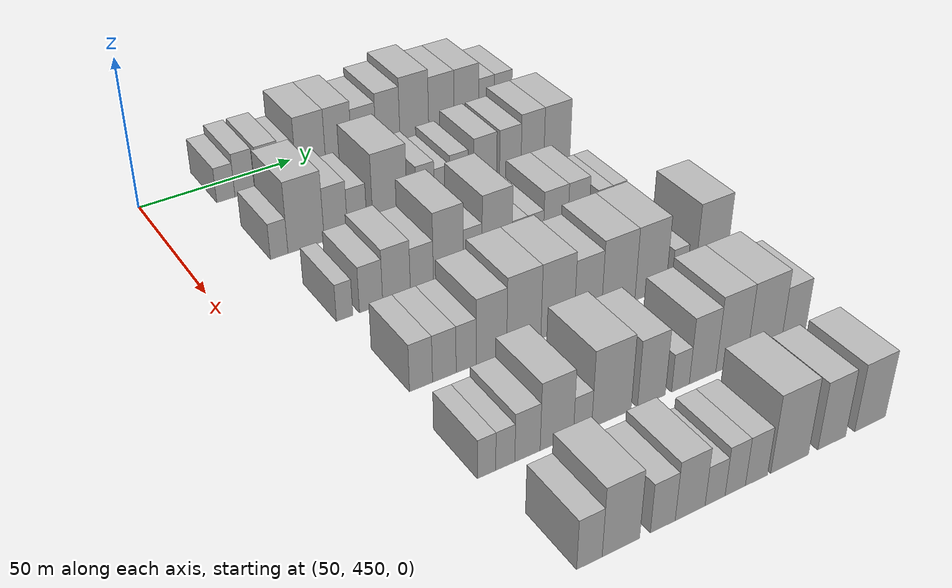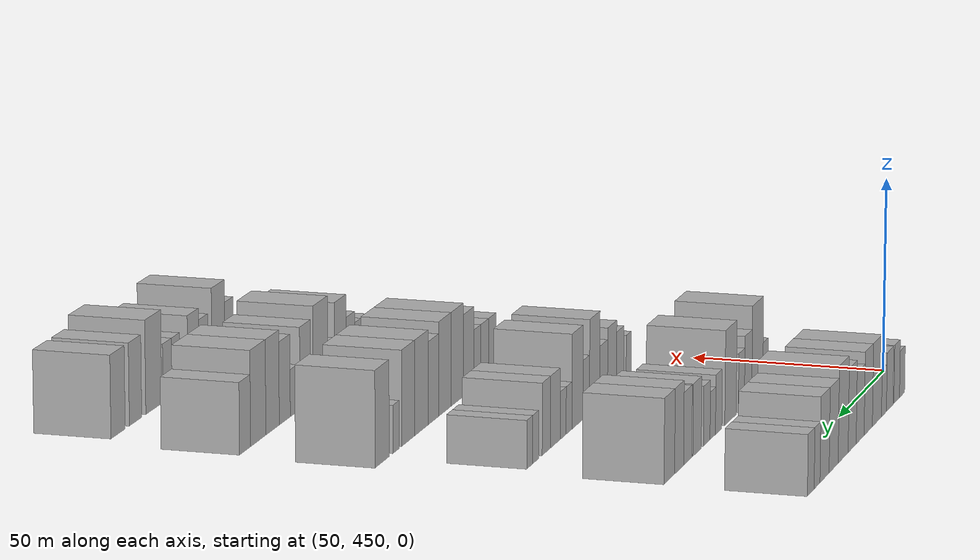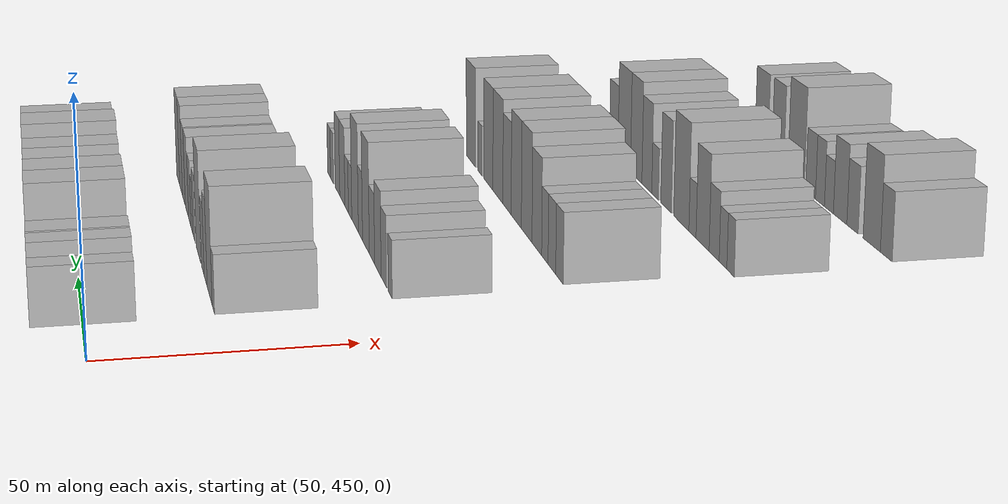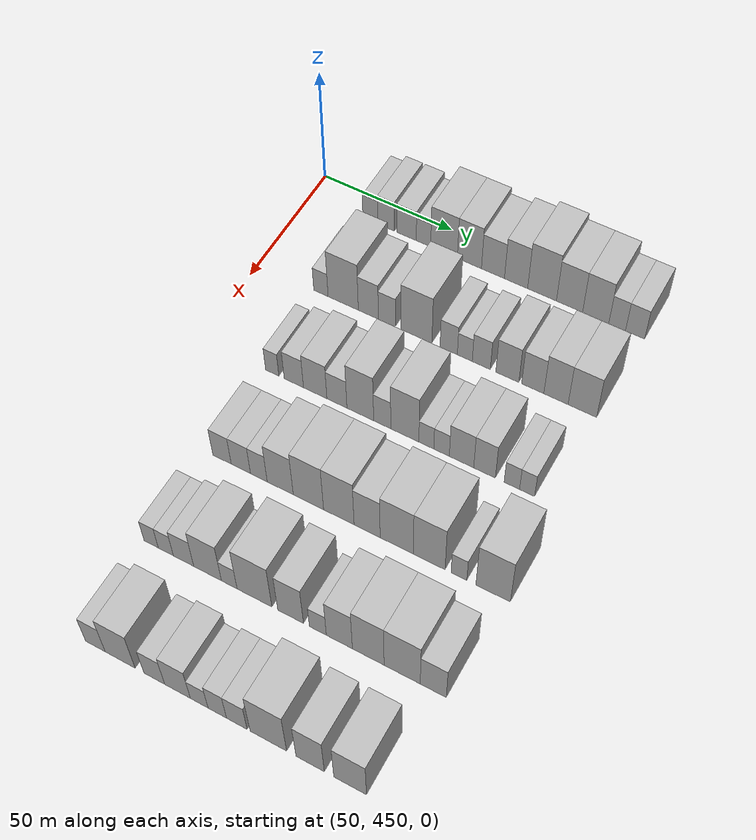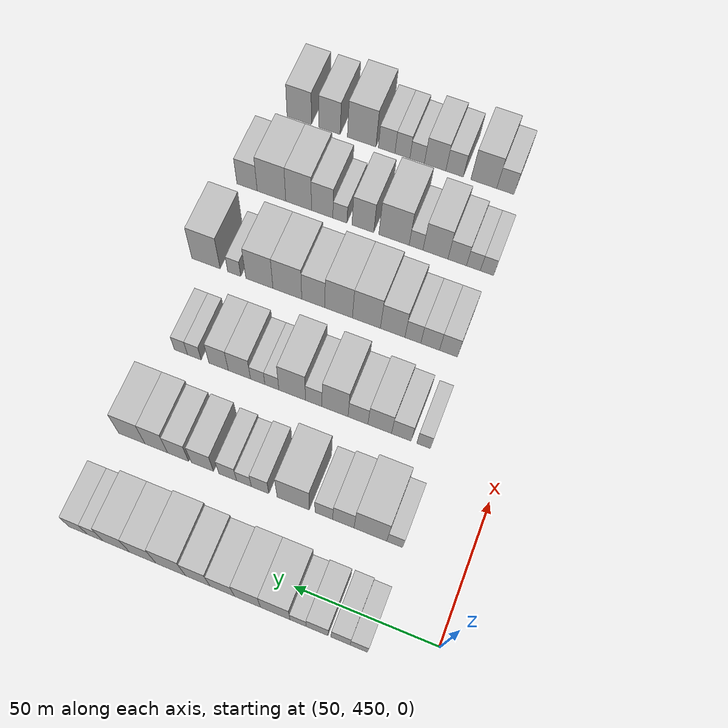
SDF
<sdf version="1.6">
 <world name="default">
  <model name="building_112">
   <static>1</static>
   <pose>50.0000 473.7360 0 0.000000 0.000000 0.000000</pose>
   <link name="link">
    <pose>0 0 6.00 0 0 0</pose>
    <collision name="collision"><geometry><box><size>20.0000 5.9455 12.0000</size></box></geometry></collision>
    <visual name="visual">
     <cast_shadows>0</cast_shadows>
     <geometry><box><size>20.0000 5.9455 12.0000</size></box></geometry>
     <material>
      <script>
       <uri>model://HANNAS_wall/materials/scripts</uri>
       <uri>model://HANNAS_wall/materials/textures</uri>
       <name>vrc/HANNAS_wall</name>
      </script>
     </material>
    </visual>
   </link>
  </model>
  <model name="building_113">
   <static>1</static>
   <pose>50.0000 479.9496 0 0.000000 0.000000 0.000000</pose>
   <link name="link">
    <pose>0 0 7.50 0 0 0</pose>
    <collision name="collision"><geometry><box><size>20.0000 6.4817 15.0000</size></box></geometry></collision>
    <visual name="visual">
     <cast_shadows>0</cast_shadows>
     <geometry><box><size>20.0000 6.4817 15.0000</size></box></geometry>
     <material>
      <script>
       <uri>model://HANNAS_wall/materials/scripts</uri>
       <uri>model://HANNAS_wall/materials/textures</uri>
       <name>vrc/HANNAS_wall</name>
      </script>
     </material>
    </visual>
   </link>
  </model>
  <model name="building_114">
   <static>1</static>
   <pose>50.0000 487.9353 0 0.000000 0.000000 0.000000</pose>
   <link name="link">
    <pose>0 0 7.50 0 0 0</pose>
    <collision name="collision"><geometry><box><size>20.0000 7.4897 15.0000</size></box></geometry></collision>
    <visual name="visual">
     <cast_shadows>0</cast_shadows>
     <geometry><box><size>20.0000 7.4897 15.0000</size></box></geometry>
     <material>
      <script>
       <uri>model://HANNAS_wall/materials/scripts</uri>
       <uri>model://HANNAS_wall/materials/textures</uri>
       <name>vrc/HANNAS_wall</name>
      </script>
     </material>
    </visual>
   </link>
  </model>
  <model name="building_115">
   <static>1</static>
   <pose>50.0000 494.4677 0 0.000000 0.000000 0.000000</pose>
   <link name="link">
    <pose>0 0 6.00 0 0 0</pose>
    <collision name="collision"><geometry><box><size>20.0000 5.5752 12.0000</size></box></geometry></collision>
    <visual name="visual">
     <cast_shadows>0</cast_shadows>
     <geometry><box><size>20.0000 5.5752 12.0000</size></box></geometry>
     <material>
      <script>
       <uri>model://HANNAS_wall/materials/scripts</uri>
       <uri>model://HANNAS_wall/materials/textures</uri>
       <name>vrc/HANNAS_wall</name>
      </script>
     </material>
    </visual>
   </link>
  </model>
  <model name="building_116">
   <static>1</static>
   <pose>50.0000 502.3619 0 0.000000 0.000000 0.000000</pose>
   <link name="link">
    <pose>0 0 10.50 0 0 0</pose>
    <collision name="collision"><geometry><box><size>20.0000 10.2132 21.0000</size></box></geometry></collision>
    <visual name="visual">
     <cast_shadows>0</cast_shadows>
     <geometry><box><size>20.0000 10.2132 21.0000</size></box></geometry>
     <material>
      <script>
       <uri>model://HANNAS_wall/materials/scripts</uri>
       <uri>model://HANNAS_wall/materials/textures</uri>
       <name>vrc/HANNAS_wall</name>
      </script>
     </material>
    </visual>
   </link>
  </model>
  <model name="building_117">
   <static>1</static>
   <pose>50.0000 512.0486 0 0.000000 0.000000 0.000000</pose>
   <link name="link">
    <pose>0 0 10.50 0 0 0</pose>
    <collision name="collision"><geometry><box><size>20.0000 9.1602 21.0000</size></box></geometry></collision>
    <visual name="visual">
     <cast_shadows>0</cast_shadows>
     <geometry><box><size>20.0000 9.1602 21.0000</size></box></geometry>
     <material>
      <script>
       <uri>model://HANNAS_wall/materials/scripts</uri>
       <uri>model://HANNAS_wall/materials/textures</uri>
       <name>vrc/HANNAS_wall</name>
      </script>
     </material>
    </visual>
   </link>
  </model>
  <model name="building_118">
   <static>1</static>
   <pose>50.0000 520.9578 0 0.000000 0.000000 0.000000</pose>
   <link name="link">
    <pose>0 0 9.00 0 0 0</pose>
    <collision name="collision"><geometry><box><size>20.0000 8.6583 18.0000</size></box></geometry></collision>
    <visual name="visual">
     <cast_shadows>0</cast_shadows>
     <geometry><box><size>20.0000 8.6583 18.0000</size></box></geometry>
     <material>
      <script>
       <uri>model://HANNAS_wall/materials/scripts</uri>
       <uri>model://HANNAS_wall/materials/textures</uri>
       <name>vrc/HANNAS_wall</name>
      </script>
     </material>
    </visual>
   </link>
  </model>
  <model name="building_119">
   <static>1</static>
   <pose>50.0000 529.6133 0 0.000000 0.000000 0.000000</pose>
   <link name="link">
    <pose>0 0 10.50 0 0 0</pose>
    <collision name="collision"><geometry><box><size>20.0000 8.6525 21.0000</size></box></geometry></collision>
    <visual name="visual">
     <cast_shadows>0</cast_shadows>
     <geometry><box><size>20.0000 8.6525 21.0000</size></box></geometry>
     <material>
      <script>
       <uri>model://HANNAS_wall/materials/scripts</uri>
       <uri>model://HANNAS_wall/materials/textures</uri>
       <name>vrc/HANNAS_wall</name>
      </script>
     </material>
    </visual>
   </link>
  </model>
  <model name="building_120">
   <static>1</static>
   <pose>50.0000 539.2486 0 0.000000 0.000000 0.000000</pose>
   <link name="link">
    <pose>0 0 12.00 0 0 0</pose>
    <collision name="collision"><geometry><box><size>20.0000 10.6181 24.0000</size></box></geometry></collision>
    <visual name="visual">
     <cast_shadows>0</cast_shadows>
     <geometry><box><size>20.0000 10.6181 24.0000</size></box></geometry>
     <material>
      <script>
       <uri>model://HANNAS_wall/materials/scripts</uri>
       <uri>model://HANNAS_wall/materials/textures</uri>
       <name>vrc/HANNAS_wall</name>
      </script>
     </material>
    </visual>
   </link>
  </model>
  <model name="building_121">
   <static>1</static>
   <pose>50.0000 549.3420 0 0.000000 0.000000 0.000000</pose>
   <link name="link">
    <pose>0 0 10.50 0 0 0</pose>
    <collision name="collision"><geometry><box><size>20.0000 9.5687 21.0000</size></box></geometry></collision>
    <visual name="visual">
     <cast_shadows>0</cast_shadows>
     <geometry><box><size>20.0000 9.5687 21.0000</size></box></geometry>
     <material>
      <script>
       <uri>model://HANNAS_wall/materials/scripts</uri>
       <uri>model://HANNAS_wall/materials/textures</uri>
       <name>vrc/HANNAS_wall</name>
      </script>
     </material>
    </visual>
   </link>
  </model>
  <model name="building_122">
   <static>1</static>
   <pose>50.0000 558.8602 0 0.000000 0.000000 0.000000</pose>
   <link name="link">
    <pose>0 0 10.50 0 0 0</pose>
    <collision name="collision"><geometry><box><size>20.0000 9.4676 21.0000</size></box></geometry></collision>
    <visual name="visual">
     <cast_shadows>0</cast_shadows>
     <geometry><box><size>20.0000 9.4676 21.0000</size></box></geometry>
     <material>
      <script>
       <uri>model://HANNAS_wall/materials/scripts</uri>
       <uri>model://HANNAS_wall/materials/textures</uri>
       <name>vrc/HANNAS_wall</name>
      </script>
     </material>
    </visual>
   </link>
  </model>
  <model name="building_123">
   <static>1</static>
   <pose>50.0000 566.5960 0 0.000000 0.000000 0.000000</pose>
   <link name="link">
    <pose>0 0 7.50 0 0 0</pose>
    <collision name="collision"><geometry><box><size>20.0000 6.0040 15.0000</size></box></geometry></collision>
    <visual name="visual">
     <cast_shadows>0</cast_shadows>
     <geometry><box><size>20.0000 6.0040 15.0000</size></box></geometry>
     <material>
      <script>
       <uri>model://HANNAS_wall/materials/scripts</uri>
       <uri>model://HANNAS_wall/materials/textures</uri>
       <name>vrc/HANNAS_wall</name>
      </script>
     </material>
    </visual>
   </link>
  </model>
  <model name="building_124">
   <static>1</static>
   <pose>50.0000 573.0127 0 0.000000 0.000000 0.000000</pose>
   <link name="link">
    <pose>0 0 7.50 0 0 0</pose>
    <collision name="collision"><geometry><box><size>20.0000 6.8294 15.0000</size></box></geometry></collision>
    <visual name="visual">
     <cast_shadows>0</cast_shadows>
     <geometry><box><size>20.0000 6.8294 15.0000</size></box></geometry>
     <material>
      <script>
       <uri>model://HANNAS_wall/materials/scripts</uri>
       <uri>model://HANNAS_wall/materials/textures</uri>
       <name>vrc/HANNAS_wall</name>
      </script>
     </material>
    </visual>
   </link>
  </model>
  <model name="building_242">
   <static>1</static>
   <pose>85.0000 474.6253 0 0.000000 0.000000 0.000000</pose>
   <link name="link">
    <pose>0 0 6.00 0 0 0</pose>
    <collision name="collision"><geometry><box><size>20.0000 5.5191 12.0000</size></box></geometry></collision>
    <visual name="visual">
     <cast_shadows>0</cast_shadows>
     <geometry><box><size>20.0000 5.5191 12.0000</size></box></geometry>
     <material>
      <script>
       <uri>model://HANNAS_wall/materials/scripts</uri>
       <uri>model://HANNAS_wall/materials/textures</uri>
       <name>vrc/HANNAS_wall</name>
      </script>
     </material>
    </visual>
   </link>
  </model>
  <model name="building_243">
   <static>1</static>
   <pose>85.0000 483.1679 0 0.000000 0.000000 0.000000</pose>
   <link name="link">
    <pose>0 0 12.00 0 0 0</pose>
    <collision name="collision"><geometry><box><size>20.0000 11.5660 24.0000</size></box></geometry></collision>
    <visual name="visual">
     <cast_shadows>0</cast_shadows>
     <geometry><box><size>20.0000 11.5660 24.0000</size></box></geometry>
     <material>
      <script>
       <uri>model://HANNAS_wall/materials/scripts</uri>
       <uri>model://HANNAS_wall/materials/textures</uri>
       <name>vrc/HANNAS_wall</name>
      </script>
     </material>
    </visual>
   </link>
  </model>
  <model name="building_244">
   <static>1</static>
   <pose>85.0000 492.7516 0 0.000000 0.000000 0.000000</pose>
   <link name="link">
    <pose>0 0 9.00 0 0 0</pose>
    <collision name="collision"><geometry><box><size>20.0000 7.6013 18.0000</size></box></geometry></collision>
    <visual name="visual">
     <cast_shadows>0</cast_shadows>
     <geometry><box><size>20.0000 7.6013 18.0000</size></box></geometry>
     <material>
      <script>
       <uri>model://HANNAS_wall/materials/scripts</uri>
       <uri>model://HANNAS_wall/materials/textures</uri>
       <name>vrc/HANNAS_wall</name>
      </script>
     </material>
    </visual>
   </link>
  </model>
  <model name="building_245">
   <static>1</static>
   <pose>85.0000 499.7301 0 0.000000 0.000000 0.000000</pose>
   <link name="link">
    <pose>0 0 7.50 0 0 0</pose>
    <collision name="collision"><geometry><box><size>20.0000 6.3558 15.0000</size></box></geometry></collision>
    <visual name="visual">
     <cast_shadows>0</cast_shadows>
     <geometry><box><size>20.0000 6.3558 15.0000</size></box></geometry>
     <material>
      <script>
       <uri>model://HANNAS_wall/materials/scripts</uri>
       <uri>model://HANNAS_wall/materials/textures</uri>
       <name>vrc/HANNAS_wall</name>
      </script>
     </material>
    </visual>
   </link>
  </model>
  <model name="building_246">
   <static>1</static>
   <pose>85.0000 510.7044 0 0.000000 0.000000 0.000000</pose>
   <link name="link">
    <pose>0 0 12.00 0 0 0</pose>
    <collision name="collision"><geometry><box><size>20.0000 11.5927 24.0000</size></box></geometry></collision>
    <visual name="visual">
     <cast_shadows>0</cast_shadows>
     <geometry><box><size>20.0000 11.5927 24.0000</size></box></geometry>
     <material>
      <script>
       <uri>model://HANNAS_wall/materials/scripts</uri>
       <uri>model://HANNAS_wall/materials/textures</uri>
       <name>vrc/HANNAS_wall</name>
      </script>
     </material>
    </visual>
   </link>
  </model>
  <model name="building_247">
   <static>1</static>
   <pose>85.0000 522.6694 0 0.000000 0.000000 0.000000</pose>
   <link name="link">
    <pose>0 0 7.50 0 0 0</pose>
    <collision name="collision"><geometry><box><size>20.0000 6.3374 15.0000</size></box></geometry></collision>
    <visual name="visual">
     <cast_shadows>0</cast_shadows>
     <geometry><box><size>20.0000 6.3374 15.0000</size></box></geometry>
     <material>
      <script>
       <uri>model://HANNAS_wall/materials/scripts</uri>
       <uri>model://HANNAS_wall/materials/textures</uri>
       <name>vrc/HANNAS_wall</name>
      </script>
     </material>
    </visual>
   </link>
  </model>
  <model name="building_248">
   <static>1</static>
   <pose>85.0000 528.5534 0 0.000000 0.000000 0.000000</pose>
   <link name="link">
    <pose>0 0 6.00 0 0 0</pose>
    <collision name="collision"><geometry><box><size>20.0000 5.4305 12.0000</size></box></geometry></collision>
    <visual name="visual">
     <cast_shadows>0</cast_shadows>
     <geometry><box><size>20.0000 5.4305 12.0000</size></box></geometry>
     <material>
      <script>
       <uri>model://HANNAS_wall/materials/scripts</uri>
       <uri>model://HANNAS_wall/materials/textures</uri>
       <name>vrc/HANNAS_wall</name>
      </script>
     </material>
    </visual>
   </link>
  </model>
  <model name="building_249">
   <static>1</static>
   <pose>85.0000 534.5385 0 0.000000 0.000000 0.000000</pose>
   <link name="link">
    <pose>0 0 7.50 0 0 0</pose>
    <collision name="collision"><geometry><box><size>20.0000 6.5397 15.0000</size></box></geometry></collision>
    <visual name="visual">
     <cast_shadows>0</cast_shadows>
     <geometry><box><size>20.0000 6.5397 15.0000</size></box></geometry>
     <material>
      <script>
       <uri>model://HANNAS_wall/materials/scripts</uri>
       <uri>model://HANNAS_wall/materials/textures</uri>
       <name>vrc/HANNAS_wall</name>
      </script>
     </material>
    </visual>
   </link>
  </model>
  <model name="building_250">
   <static>1</static>
   <pose>85.0000 543.9249 0 0.000000 0.000000 0.000000</pose>
   <link name="link">
    <pose>0 0 9.00 0 0 0</pose>
    <collision name="collision"><geometry><box><size>20.0000 8.2331 18.0000</size></box></geometry></collision>
    <visual name="visual">
     <cast_shadows>0</cast_shadows>
     <geometry><box><size>20.0000 8.2331 18.0000</size></box></geometry>
     <material>
      <script>
       <uri>model://HANNAS_wall/materials/scripts</uri>
       <uri>model://HANNAS_wall/materials/textures</uri>
       <name>vrc/HANNAS_wall</name>
      </script>
     </material>
    </visual>
   </link>
  </model>
  <model name="building_251">
   <static>1</static>
   <pose>85.0000 552.9730 0 0.000000 0.000000 0.000000</pose>
   <link name="link">
    <pose>0 0 9.00 0 0 0</pose>
    <collision name="collision"><geometry><box><size>20.0000 7.8632 18.0000</size></box></geometry></collision>
    <visual name="visual">
     <cast_shadows>0</cast_shadows>
     <geometry><box><size>20.0000 7.8632 18.0000</size></box></geometry>
     <material>
      <script>
       <uri>model://HANNAS_wall/materials/scripts</uri>
       <uri>model://HANNAS_wall/materials/textures</uri>
       <name>vrc/HANNAS_wall</name>
      </script>
     </material>
    </visual>
   </link>
  </model>
  <model name="building_252">
   <static>1</static>
   <pose>85.0000 561.1648 0 0.000000 0.000000 0.000000</pose>
   <link name="link">
    <pose>0 0 10.50 0 0 0</pose>
    <collision name="collision"><geometry><box><size>20.0000 8.5204 21.0000</size></box></geometry></collision>
    <visual name="visual">
     <cast_shadows>0</cast_shadows>
     <geometry><box><size>20.0000 8.5204 21.0000</size></box></geometry>
     <material>
      <script>
       <uri>model://HANNAS_wall/materials/scripts</uri>
       <uri>model://HANNAS_wall/materials/textures</uri>
       <name>vrc/HANNAS_wall</name>
      </script>
     </material>
    </visual>
   </link>
  </model>
  <model name="building_253">
   <static>1</static>
   <pose>85.0000 570.4070 0 0.000000 0.000000 0.000000</pose>
   <link name="link">
    <pose>0 0 10.50 0 0 0</pose>
    <collision name="collision"><geometry><box><size>20.0000 9.9640 21.0000</size></box></geometry></collision>
    <visual name="visual">
     <cast_shadows>0</cast_shadows>
     <geometry><box><size>20.0000 9.9640 21.0000</size></box></geometry>
     <material>
      <script>
       <uri>model://HANNAS_wall/materials/scripts</uri>
       <uri>model://HANNAS_wall/materials/textures</uri>
       <name>vrc/HANNAS_wall</name>
      </script>
     </material>
    </visual>
   </link>
  </model>
  <model name="building_373">
   <static>1</static>
   <pose>120.0000 477.1360 0 0.000000 0.000000 0.000000</pose>
   <link name="link">
    <pose>0 0 6.00 0 0 0</pose>
    <collision name="collision"><geometry><box><size>20.0000 4.9716 12.0000</size></box></geometry></collision>
    <visual name="visual">
     <cast_shadows>0</cast_shadows>
     <geometry><box><size>20.0000 4.9716 12.0000</size></box></geometry>
     <material>
      <script>
       <uri>model://HANNAS_wall/materials/scripts</uri>
       <uri>model://HANNAS_wall/materials/textures</uri>
       <name>vrc/HANNAS_wall</name>
      </script>
     </material>
    </visual>
   </link>
  </model>
  <model name="building_374">
   <static>1</static>
   <pose>120.0000 485.2087 0 0.000000 0.000000 0.000000</pose>
   <link name="link">
    <pose>0 0 7.50 0 0 0</pose>
    <collision name="collision"><geometry><box><size>20.0000 7.1738 15.0000</size></box></geometry></collision>
    <visual name="visual">
     <cast_shadows>0</cast_shadows>
     <geometry><box><size>20.0000 7.1738 15.0000</size></box></geometry>
     <material>
      <script>
       <uri>model://HANNAS_wall/materials/scripts</uri>
       <uri>model://HANNAS_wall/materials/textures</uri>
       <name>vrc/HANNAS_wall</name>
      </script>
     </material>
    </visual>
   </link>
  </model>
  <model name="building_375">
   <static>1</static>
   <pose>120.0000 493.1292 0 0.000000 0.000000 0.000000</pose>
   <link name="link">
    <pose>0 0 9.00 0 0 0</pose>
    <collision name="collision"><geometry><box><size>20.0000 8.6674 18.0000</size></box></geometry></collision>
    <visual name="visual">
     <cast_shadows>0</cast_shadows>
     <geometry><box><size>20.0000 8.6674 18.0000</size></box></geometry>
     <material>
      <script>
       <uri>model://HANNAS_wall/materials/scripts</uri>
       <uri>model://HANNAS_wall/materials/textures</uri>
       <name>vrc/HANNAS_wall</name>
      </script>
     </material>
    </visual>
   </link>
  </model>
  <model name="building_376">
   <static>1</static>
   <pose>120.0000 501.1300 0 0.000000 0.000000 0.000000</pose>
   <link name="link">
    <pose>0 0 7.50 0 0 0</pose>
    <collision name="collision"><geometry><box><size>20.0000 7.3342 15.0000</size></box></geometry></collision>
    <visual name="visual">
     <cast_shadows>0</cast_shadows>
     <geometry><box><size>20.0000 7.3342 15.0000</size></box></geometry>
     <material>
      <script>
       <uri>model://HANNAS_wall/materials/scripts</uri>
       <uri>model://HANNAS_wall/materials/textures</uri>
       <name>vrc/HANNAS_wall</name>
      </script>
     </material>
    </visual>
   </link>
  </model>
  <model name="building_377">
   <static>1</static>
   <pose>120.0000 509.6448 0 0.000000 0.000000 0.000000</pose>
   <link name="link">
    <pose>0 0 12.00 0 0 0</pose>
    <collision name="collision"><geometry><box><size>20.0000 9.6954 24.0000</size></box></geometry></collision>
    <visual name="visual">
     <cast_shadows>0</cast_shadows>
     <geometry><box><size>20.0000 9.6954 24.0000</size></box></geometry>
     <material>
      <script>
       <uri>model://HANNAS_wall/materials/scripts</uri>
       <uri>model://HANNAS_wall/materials/textures</uri>
       <name>vrc/HANNAS_wall</name>
      </script>
     </material>
    </visual>
   </link>
  </model>
  <model name="building_378">
   <static>1</static>
   <pose>120.0000 517.5686 0 0.000000 0.000000 0.000000</pose>
   <link name="link">
    <pose>0 0 7.50 0 0 0</pose>
    <collision name="collision"><geometry><box><size>20.0000 6.1524 15.0000</size></box></geometry></collision>
    <visual name="visual">
     <cast_shadows>0</cast_shadows>
     <geometry><box><size>20.0000 6.1524 15.0000</size></box></geometry>
     <material>
      <script>
       <uri>model://HANNAS_wall/materials/scripts</uri>
       <uri>model://HANNAS_wall/materials/textures</uri>
       <name>vrc/HANNAS_wall</name>
      </script>
     </material>
    </visual>
   </link>
  </model>
  <model name="building_379">
   <static>1</static>
   <pose>120.0000 525.6502 0 0.000000 0.000000 0.000000</pose>
   <link name="link">
    <pose>0 0 12.00 0 0 0</pose>
    <collision name="collision"><geometry><box><size>20.0000 10.0109 24.0000</size></box></geometry></collision>
    <visual name="visual">
     <cast_shadows>0</cast_shadows>
     <geometry><box><size>20.0000 10.0109 24.0000</size></box></geometry>
     <material>
      <script>
       <uri>model://HANNAS_wall/materials/scripts</uri>
       <uri>model://HANNAS_wall/materials/textures</uri>
       <name>vrc/HANNAS_wall</name>
      </script>
     </material>
    </visual>
   </link>
  </model>
  <model name="building_380">
   <static>1</static>
   <pose>120.0000 533.2943 0 0.000000 0.000000 0.000000</pose>
   <link name="link">
    <pose>0 0 6.00 0 0 0</pose>
    <collision name="collision"><geometry><box><size>20.0000 5.2773 12.0000</size></box></geometry></collision>
    <visual name="visual">
     <cast_shadows>0</cast_shadows>
     <geometry><box><size>20.0000 5.2773 12.0000</size></box></geometry>
     <material>
      <script>
       <uri>model://HANNAS_wall/materials/scripts</uri>
       <uri>model://HANNAS_wall/materials/textures</uri>
       <name>vrc/HANNAS_wall</name>
      </script>
     </material>
    </visual>
   </link>
  </model>
  <model name="building_381">
   <static>1</static>
   <pose>120.0000 538.6650 0 0.000000 0.000000 0.000000</pose>
   <link name="link">
    <pose>0 0 6.00 0 0 0</pose>
    <collision name="collision"><geometry><box><size>20.0000 5.4642 12.0000</size></box></geometry></collision>
    <visual name="visual">
     <cast_shadows>0</cast_shadows>
     <geometry><box><size>20.0000 5.4642 12.0000</size></box></geometry>
     <material>
      <script>
       <uri>model://HANNAS_wall/materials/scripts</uri>
       <uri>model://HANNAS_wall/materials/textures</uri>
       <name>vrc/HANNAS_wall</name>
      </script>
     </material>
    </visual>
   </link>
  </model>
  <model name="building_382">
   <static>1</static>
   <pose>120.0000 545.6459 0 0.000000 0.000000 0.000000</pose>
   <link name="link">
    <pose>0 0 9.00 0 0 0</pose>
    <collision name="collision"><geometry><box><size>20.0000 8.4975 18.0000</size></box></geometry></collision>
    <visual name="visual">
     <cast_shadows>0</cast_shadows>
     <geometry><box><size>20.0000 8.4975 18.0000</size></box></geometry>
     <material>
      <script>
       <uri>model://HANNAS_wall/materials/scripts</uri>
       <uri>model://HANNAS_wall/materials/textures</uri>
       <name>vrc/HANNAS_wall</name>
      </script>
     </material>
    </visual>
   </link>
  </model>
  <model name="building_383">
   <static>1</static>
   <pose>120.0000 553.6365 0 0.000000 0.000000 0.000000</pose>
   <link name="link">
    <pose>0 0 9.00 0 0 0</pose>
    <collision name="collision"><geometry><box><size>20.0000 7.4837 18.0000</size></box></geometry></collision>
    <visual name="visual">
     <cast_shadows>0</cast_shadows>
     <geometry><box><size>20.0000 7.4837 18.0000</size></box></geometry>
     <material>
      <script>
       <uri>model://HANNAS_wall/materials/scripts</uri>
       <uri>model://HANNAS_wall/materials/textures</uri>
       <name>vrc/HANNAS_wall</name>
      </script>
     </material>
    </visual>
   </link>
  </model>
  <model name="building_384">
   <static>1</static>
   <pose>120.0000 563.0164 0 0.000000 0.000000 0.000000</pose>
   <link name="link">
    <pose>0 0 6.00 0 0 0</pose>
    <collision name="collision"><geometry><box><size>20.0000 5.2760 12.0000</size></box></geometry></collision>
    <visual name="visual">
     <cast_shadows>0</cast_shadows>
     <geometry><box><size>20.0000 5.2760 12.0000</size></box></geometry>
     <material>
      <script>
       <uri>model://HANNAS_wall/materials/scripts</uri>
       <uri>model://HANNAS_wall/materials/textures</uri>
       <name>vrc/HANNAS_wall</name>
      </script>
     </material>
    </visual>
   </link>
  </model>
  <model name="building_385">
   <static>1</static>
   <pose>120.0000 568.2100 0 0.000000 0.000000 0.000000</pose>
   <link name="link">
    <pose>0 0 6.00 0 0 0</pose>
    <collision name="collision"><geometry><box><size>20.0000 5.1112 12.0000</size></box></geometry></collision>
    <visual name="visual">
     <cast_shadows>0</cast_shadows>
     <geometry><box><size>20.0000 5.1112 12.0000</size></box></geometry>
     <material>
      <script>
       <uri>model://HANNAS_wall/materials/scripts</uri>
       <uri>model://HANNAS_wall/materials/textures</uri>
       <name>vrc/HANNAS_wall</name>
      </script>
     </material>
    </visual>
   </link>
  </model>
  <model name="building_498">
   <static>1</static>
   <pose>155.0000 480.3895 0 0.000000 0.000000 0.000000</pose>
   <link name="link">
    <pose>0 0 7.50 0 0 0</pose>
    <collision name="collision"><geometry><box><size>20.0000 6.7159 15.0000</size></box></geometry></collision>
    <visual name="visual">
     <cast_shadows>0</cast_shadows>
     <geometry><box><size>20.0000 6.7159 15.0000</size></box></geometry>
     <material>
      <script>
       <uri>model://HANNAS_wall/materials/scripts</uri>
       <uri>model://HANNAS_wall/materials/textures</uri>
       <name>vrc/HANNAS_wall</name>
      </script>
     </material>
    </visual>
   </link>
  </model>
  <model name="building_499">
   <static>1</static>
   <pose>155.0000 487.2527 0 0.000000 0.000000 0.000000</pose>
   <link name="link">
    <pose>0 0 7.50 0 0 0</pose>
    <collision name="collision"><geometry><box><size>20.0000 7.0105 15.0000</size></box></geometry></collision>
    <visual name="visual">
     <cast_shadows>0</cast_shadows>
     <geometry><box><size>20.0000 7.0105 15.0000</size></box></geometry>
     <material>
      <script>
       <uri>model://HANNAS_wall/materials/scripts</uri>
       <uri>model://HANNAS_wall/materials/textures</uri>
       <name>vrc/HANNAS_wall</name>
      </script>
     </material>
    </visual>
   </link>
  </model>
  <model name="building_500">
   <static>1</static>
   <pose>155.0000 493.7750 0 0.000000 0.000000 0.000000</pose>
   <link name="link">
    <pose>0 0 7.50 0 0 0</pose>
    <collision name="collision"><geometry><box><size>20.0000 6.0341 15.0000</size></box></geometry></collision>
    <visual name="visual">
     <cast_shadows>0</cast_shadows>
     <geometry><box><size>20.0000 6.0341 15.0000</size></box></geometry>
     <material>
      <script>
       <uri>model://HANNAS_wall/materials/scripts</uri>
       <uri>model://HANNAS_wall/materials/textures</uri>
       <name>vrc/HANNAS_wall</name>
      </script>
     </material>
    </visual>
   </link>
  </model>
  <model name="building_501">
   <static>1</static>
   <pose>155.0000 501.4513 0 0.000000 0.000000 0.000000</pose>
   <link name="link">
    <pose>0 0 10.50 0 0 0</pose>
    <collision name="collision"><geometry><box><size>20.0000 9.3184 21.0000</size></box></geometry></collision>
    <visual name="visual">
     <cast_shadows>0</cast_shadows>
     <geometry><box><size>20.0000 9.3184 21.0000</size></box></geometry>
     <material>
      <script>
       <uri>model://HANNAS_wall/materials/scripts</uri>
       <uri>model://HANNAS_wall/materials/textures</uri>
       <name>vrc/HANNAS_wall</name>
      </script>
     </material>
    </visual>
   </link>
  </model>
  <model name="building_502">
   <static>1</static>
   <pose>155.0000 511.4647 0 0.000000 0.000000 0.000000</pose>
   <link name="link">
    <pose>0 0 12.00 0 0 0</pose>
    <collision name="collision"><geometry><box><size>20.0000 10.7084 24.0000</size></box></geometry></collision>
    <visual name="visual">
     <cast_shadows>0</cast_shadows>
     <geometry><box><size>20.0000 10.7084 24.0000</size></box></geometry>
     <material>
      <script>
       <uri>model://HANNAS_wall/materials/scripts</uri>
       <uri>model://HANNAS_wall/materials/textures</uri>
       <name>vrc/HANNAS_wall</name>
      </script>
     </material>
    </visual>
   </link>
  </model>
  <model name="building_503">
   <static>1</static>
   <pose>155.0000 522.1553 0 0.000000 0.000000 0.000000</pose>
   <link name="link">
    <pose>0 0 12.00 0 0 0</pose>
    <collision name="collision"><geometry><box><size>20.0000 10.6728 24.0000</size></box></geometry></collision>
    <visual name="visual">
     <cast_shadows>0</cast_shadows>
     <geometry><box><size>20.0000 10.6728 24.0000</size></box></geometry>
     <material>
      <script>
       <uri>model://HANNAS_wall/materials/scripts</uri>
       <uri>model://HANNAS_wall/materials/textures</uri>
       <name>vrc/HANNAS_wall</name>
      </script>
     </material>
    </visual>
   </link>
  </model>
  <model name="building_504">
   <static>1</static>
   <pose>155.0000 531.9804 0 0.000000 0.000000 0.000000</pose>
   <link name="link">
    <pose>0 0 10.50 0 0 0</pose>
    <collision name="collision"><geometry><box><size>20.0000 8.9775 21.0000</size></box></geometry></collision>
    <visual name="visual">
     <cast_shadows>0</cast_shadows>
     <geometry><box><size>20.0000 8.9775 21.0000</size></box></geometry>
     <material>
      <script>
       <uri>model://HANNAS_wall/materials/scripts</uri>
       <uri>model://HANNAS_wall/materials/textures</uri>
       <name>vrc/HANNAS_wall</name>
      </script>
     </material>
    </visual>
   </link>
  </model>
  <model name="building_505">
   <static>1</static>
   <pose>155.0000 542.1041 0 0.000000 0.000000 0.000000</pose>
   <link name="link">
    <pose>0 0 12.00 0 0 0</pose>
    <collision name="collision"><geometry><box><size>20.0000 11.2697 24.0000</size></box></geometry></collision>
    <visual name="visual">
     <cast_shadows>0</cast_shadows>
     <geometry><box><size>20.0000 11.2697 24.0000</size></box></geometry>
     <material>
      <script>
       <uri>model://HANNAS_wall/materials/scripts</uri>
       <uri>model://HANNAS_wall/materials/textures</uri>
       <name>vrc/HANNAS_wall</name>
      </script>
     </material>
    </visual>
   </link>
  </model>
  <model name="building_506">
   <static>1</static>
   <pose>155.0000 553.1014 0 0.000000 0.000000 0.000000</pose>
   <link name="link">
    <pose>0 0 12.00 0 0 0</pose>
    <collision name="collision"><geometry><box><size>20.0000 10.7248 24.0000</size></box></geometry></collision>
    <visual name="visual">
     <cast_shadows>0</cast_shadows>
     <geometry><box><size>20.0000 10.7248 24.0000</size></box></geometry>
     <material>
      <script>
       <uri>model://HANNAS_wall/materials/scripts</uri>
       <uri>model://HANNAS_wall/materials/textures</uri>
       <name>vrc/HANNAS_wall</name>
      </script>
     </material>
    </visual>
   </link>
  </model>
  <model name="building_507">
   <static>1</static>
   <pose>155.0000 563.0832 0 0.000000 0.000000 0.000000</pose>
   <link name="link">
    <pose>0 0 6.00 0 0 0</pose>
    <collision name="collision"><geometry><box><size>20.0000 5.2388 12.0000</size></box></geometry></collision>
    <visual name="visual">
     <cast_shadows>0</cast_shadows>
     <geometry><box><size>20.0000 5.2388 12.0000</size></box></geometry>
     <material>
      <script>
       <uri>model://HANNAS_wall/materials/scripts</uri>
       <uri>model://HANNAS_wall/materials/textures</uri>
       <name>vrc/HANNAS_wall</name>
      </script>
     </material>
    </visual>
   </link>
  </model>
  <model name="building_508">
   <static>1</static>
   <pose>155.0000 574.3699 0 0.000000 0.000000 0.000000</pose>
   <link name="link">
    <pose>0 0 12.00 0 0 0</pose>
    <collision name="collision"><geometry><box><size>20.0000 11.3347 24.0000</size></box></geometry></collision>
    <visual name="visual">
     <cast_shadows>0</cast_shadows>
     <geometry><box><size>20.0000 11.3347 24.0000</size></box></geometry>
     <material>
      <script>
       <uri>model://HANNAS_wall/materials/scripts</uri>
       <uri>model://HANNAS_wall/materials/textures</uri>
       <name>vrc/HANNAS_wall</name>
      </script>
     </material>
    </visual>
   </link>
  </model>
  <model name="building_627">
   <static>1</static>
   <pose>190.0000 477.7106 0 0.000000 0.000000 0.000000</pose>
   <link name="link">
    <pose>0 0 6.00 0 0 0</pose>
    <collision name="collision"><geometry><box><size>20.0000 5.1003 12.0000</size></box></geometry></collision>
    <visual name="visual">
     <cast_shadows>0</cast_shadows>
     <geometry><box><size>20.0000 5.1003 12.0000</size></box></geometry>
     <material>
      <script>
       <uri>model://HANNAS_wall/materials/scripts</uri>
       <uri>model://HANNAS_wall/materials/textures</uri>
       <name>vrc/HANNAS_wall</name>
      </script>
     </material>
    </visual>
   </link>
  </model>
  <model name="building_628">
   <static>1</static>
   <pose>190.0000 482.9459 0 0.000000 0.000000 0.000000</pose>
   <link name="link">
    <pose>0 0 6.00 0 0 0</pose>
    <collision name="collision"><geometry><box><size>20.0000 5.3702 12.0000</size></box></geometry></collision>
    <visual name="visual">
     <cast_shadows>0</cast_shadows>
     <geometry><box><size>20.0000 5.3702 12.0000</size></box></geometry>
     <material>
      <script>
       <uri>model://HANNAS_wall/materials/scripts</uri>
       <uri>model://HANNAS_wall/materials/textures</uri>
       <name>vrc/HANNAS_wall</name>
      </script>
     </material>
    </visual>
   </link>
  </model>
  <model name="building_629">
   <static>1</static>
   <pose>190.0000 489.2407 0 0.000000 0.000000 0.000000</pose>
   <link name="link">
    <pose>0 0 7.50 0 0 0</pose>
    <collision name="collision"><geometry><box><size>20.0000 7.2194 15.0000</size></box></geometry></collision>
    <visual name="visual">
     <cast_shadows>0</cast_shadows>
     <geometry><box><size>20.0000 7.2194 15.0000</size></box></geometry>
     <material>
      <script>
       <uri>model://HANNAS_wall/materials/scripts</uri>
       <uri>model://HANNAS_wall/materials/textures</uri>
       <name>vrc/HANNAS_wall</name>
      </script>
     </material>
    </visual>
   </link>
  </model>
  <model name="building_630">
   <static>1</static>
   <pose>190.0000 497.7080 0 0.000000 0.000000 0.000000</pose>
   <link name="link">
    <pose>0 0 10.50 0 0 0</pose>
    <collision name="collision"><geometry><box><size>20.0000 9.7152 21.0000</size></box></geometry></collision>
    <visual name="visual">
     <cast_shadows>0</cast_shadows>
     <geometry><box><size>20.0000 9.7152 21.0000</size></box></geometry>
     <material>
      <script>
       <uri>model://HANNAS_wall/materials/scripts</uri>
       <uri>model://HANNAS_wall/materials/textures</uri>
       <name>vrc/HANNAS_wall</name>
      </script>
     </material>
    </visual>
   </link>
  </model>
  <model name="building_631">
   <static>1</static>
   <pose>190.0000 505.2811 0 0.000000 0.000000 0.000000</pose>
   <link name="link">
    <pose>0 0 6.00 0 0 0</pose>
    <collision name="collision"><geometry><box><size>20.0000 5.4310 12.0000</size></box></geometry></collision>
    <visual name="visual">
     <cast_shadows>0</cast_shadows>
     <geometry><box><size>20.0000 5.4310 12.0000</size></box></geometry>
     <material>
      <script>
       <uri>model://HANNAS_wall/materials/scripts</uri>
       <uri>model://HANNAS_wall/materials/textures</uri>
       <name>vrc/HANNAS_wall</name>
      </script>
     </material>
    </visual>
   </link>
  </model>
  <model name="building_632">
   <static>1</static>
   <pose>190.0000 513.9784 0 0.000000 0.000000 0.000000</pose>
   <link name="link">
    <pose>0 0 12.00 0 0 0</pose>
    <collision name="collision"><geometry><box><size>20.0000 11.9636 24.0000</size></box></geometry></collision>
    <visual name="visual">
     <cast_shadows>0</cast_shadows>
     <geometry><box><size>20.0000 11.9636 24.0000</size></box></geometry>
     <material>
      <script>
       <uri>model://HANNAS_wall/materials/scripts</uri>
       <uri>model://HANNAS_wall/materials/textures</uri>
       <name>vrc/HANNAS_wall</name>
      </script>
     </material>
    </visual>
   </link>
  </model>
  <model name="building_633">
   <static>1</static>
   <pose>190.0000 526.3122 0 0.000000 0.000000 0.000000</pose>
   <link name="link">
    <pose>0 0 10.50 0 0 0</pose>
    <collision name="collision"><geometry><box><size>20.0000 8.7040 21.0000</size></box></geometry></collision>
    <visual name="visual">
     <cast_shadows>0</cast_shadows>
     <geometry><box><size>20.0000 8.7040 21.0000</size></box></geometry>
     <material>
      <script>
       <uri>model://HANNAS_wall/materials/scripts</uri>
       <uri>model://HANNAS_wall/materials/textures</uri>
       <name>vrc/HANNAS_wall</name>
      </script>
     </material>
    </visual>
   </link>
  </model>
  <model name="building_634">
   <static>1</static>
   <pose>190.0000 535.4975 0 0.000000 0.000000 0.000000</pose>
   <link name="link">
    <pose>0 0 6.00 0 0 0</pose>
    <collision name="collision"><geometry><box><size>20.0000 5.6666 12.0000</size></box></geometry></collision>
    <visual name="visual">
     <cast_shadows>0</cast_shadows>
     <geometry><box><size>20.0000 5.6666 12.0000</size></box></geometry>
     <material>
      <script>
       <uri>model://HANNAS_wall/materials/scripts</uri>
       <uri>model://HANNAS_wall/materials/textures</uri>
       <name>vrc/HANNAS_wall</name>
      </script>
     </material>
    </visual>
   </link>
  </model>
  <model name="building_635">
   <static>1</static>
   <pose>190.0000 542.6571 0 0.000000 0.000000 0.000000</pose>
   <link name="link">
    <pose>0 0 10.50 0 0 0</pose>
    <collision name="collision"><geometry><box><size>20.0000 8.6526 21.0000</size></box></geometry></collision>
    <visual name="visual">
     <cast_shadows>0</cast_shadows>
     <geometry><box><size>20.0000 8.6526 21.0000</size></box></geometry>
     <material>
      <script>
       <uri>model://HANNAS_wall/materials/scripts</uri>
       <uri>model://HANNAS_wall/materials/textures</uri>
       <name>vrc/HANNAS_wall</name>
      </script>
     </material>
    </visual>
   </link>
  </model>
  <model name="building_636">
   <static>1</static>
   <pose>190.0000 552.1801 0 0.000000 0.000000 0.000000</pose>
   <link name="link">
    <pose>0 0 12.00 0 0 0</pose>
    <collision name="collision"><geometry><box><size>20.0000 10.3933 24.0000</size></box></geometry></collision>
    <visual name="visual">
     <cast_shadows>0</cast_shadows>
     <geometry><box><size>20.0000 10.3933 24.0000</size></box></geometry>
     <material>
      <script>
       <uri>model://HANNAS_wall/materials/scripts</uri>
       <uri>model://HANNAS_wall/materials/textures</uri>
       <name>vrc/HANNAS_wall</name>
      </script>
     </material>
    </visual>
   </link>
  </model>
  <model name="building_637">
   <static>1</static>
   <pose>190.0000 563.2183 0 0.000000 0.000000 0.000000</pose>
   <link name="link">
    <pose>0 0 12.00 0 0 0</pose>
    <collision name="collision"><geometry><box><size>20.0000 11.6831 24.0000</size></box></geometry></collision>
    <visual name="visual">
     <cast_shadows>0</cast_shadows>
     <geometry><box><size>20.0000 11.6831 24.0000</size></box></geometry>
     <material>
      <script>
       <uri>model://HANNAS_wall/materials/scripts</uri>
       <uri>model://HANNAS_wall/materials/textures</uri>
       <name>vrc/HANNAS_wall</name>
      </script>
     </material>
    </visual>
   </link>
  </model>
  <model name="building_638">
   <static>1</static>
   <pose>190.0000 573.2463 0 0.000000 0.000000 0.000000</pose>
   <link name="link">
    <pose>0 0 9.00 0 0 0</pose>
    <collision name="collision"><geometry><box><size>20.0000 8.3730 18.0000</size></box></geometry></collision>
    <visual name="visual">
     <cast_shadows>0</cast_shadows>
     <geometry><box><size>20.0000 8.3730 18.0000</size></box></geometry>
     <material>
      <script>
       <uri>model://HANNAS_wall/materials/scripts</uri>
       <uri>model://HANNAS_wall/materials/textures</uri>
       <name>vrc/HANNAS_wall</name>
      </script>
     </material>
    </visual>
   </link>
  </model>
  <model name="building_762">
   <static>1</static>
   <pose>225.0000 482.1227 0 0.000000 0.000000 0.000000</pose>
   <link name="link">
    <pose>0 0 7.50 0 0 0</pose>
    <collision name="collision"><geometry><box><size>20.0000 6.8603 15.0000</size></box></geometry></collision>
    <visual name="visual">
     <cast_shadows>0</cast_shadows>
     <geometry><box><size>20.0000 6.8603 15.0000</size></box></geometry>
     <material>
      <script>
       <uri>model://HANNAS_wall/materials/scripts</uri>
       <uri>model://HANNAS_wall/materials/textures</uri>
       <name>vrc/HANNAS_wall</name>
      </script>
     </material>
    </visual>
   </link>
  </model>
  <model name="building_763">
   <static>1</static>
   <pose>225.0000 490.7100 0 0.000000 0.000000 0.000000</pose>
   <link name="link">
    <pose>0 0 10.50 0 0 0</pose>
    <collision name="collision"><geometry><box><size>20.0000 10.3142 21.0000</size></box></geometry></collision>
    <visual name="visual">
     <cast_shadows>0</cast_shadows>
     <geometry><box><size>20.0000 10.3142 21.0000</size></box></geometry>
     <material>
      <script>
       <uri>model://HANNAS_wall/materials/scripts</uri>
       <uri>model://HANNAS_wall/materials/textures</uri>
       <name>vrc/HANNAS_wall</name>
      </script>
     </material>
    </visual>
   </link>
  </model>
  <model name="building_764">
   <static>1</static>
   <pose>225.0000 502.3980 0 0.000000 0.000000 0.000000</pose>
   <link name="link">
    <pose>0 0 7.50 0 0 0</pose>
    <collision name="collision"><geometry><box><size>20.0000 7.0618 15.0000</size></box></geometry></collision>
    <visual name="visual">
     <cast_shadows>0</cast_shadows>
     <geometry><box><size>20.0000 7.0618 15.0000</size></box></geometry>
     <material>
      <script>
       <uri>model://HANNAS_wall/materials/scripts</uri>
       <uri>model://HANNAS_wall/materials/textures</uri>
       <name>vrc/HANNAS_wall</name>
      </script>
     </material>
    </visual>
   </link>
  </model>
  <model name="building_765">
   <static>1</static>
   <pose>225.0000 510.2595 0 0.000000 0.000000 0.000000</pose>
   <link name="link">
    <pose>0 0 9.00 0 0 0</pose>
    <collision name="collision"><geometry><box><size>20.0000 8.6612 18.0000</size></box></geometry></collision>
    <visual name="visual">
     <cast_shadows>0</cast_shadows>
     <geometry><box><size>20.0000 8.6612 18.0000</size></box></geometry>
     <material>
      <script>
       <uri>model://HANNAS_wall/materials/scripts</uri>
       <uri>model://HANNAS_wall/materials/textures</uri>
       <name>vrc/HANNAS_wall</name>
      </script>
     </material>
    </visual>
   </link>
  </model>
  <model name="building_766">
   <static>1</static>
   <pose>225.0000 517.5466 0 0.000000 0.000000 0.000000</pose>
   <link name="link">
    <pose>0 0 6.00 0 0 0</pose>
    <collision name="collision"><geometry><box><size>20.0000 5.9130 12.0000</size></box></geometry></collision>
    <visual name="visual">
     <cast_shadows>0</cast_shadows>
     <geometry><box><size>20.0000 5.9130 12.0000</size></box></geometry>
     <material>
      <script>
       <uri>model://HANNAS_wall/materials/scripts</uri>
       <uri>model://HANNAS_wall/materials/textures</uri>
       <name>vrc/HANNAS_wall</name>
      </script>
     </material>
    </visual>
   </link>
  </model>
  <model name="building_767">
   <static>1</static>
   <pose>225.0000 523.5549 0 0.000000 0.000000 0.000000</pose>
   <link name="link">
    <pose>0 0 7.50 0 0 0</pose>
    <collision name="collision"><geometry><box><size>20.0000 6.1037 15.0000</size></box></geometry></collision>
    <visual name="visual">
     <cast_shadows>0</cast_shadows>
     <geometry><box><size>20.0000 6.1037 15.0000</size></box></geometry>
     <material>
      <script>
       <uri>model://HANNAS_wall/materials/scripts</uri>
       <uri>model://HANNAS_wall/materials/textures</uri>
       <name>vrc/HANNAS_wall</name>
      </script>
     </material>
    </visual>
   </link>
  </model>
  <model name="building_768">
   <static>1</static>
   <pose>225.0000 529.9968 0 0.000000 0.000000 0.000000</pose>
   <link name="link">
    <pose>0 0 7.50 0 0 0</pose>
    <collision name="collision"><geometry><box><size>20.0000 6.7801 15.0000</size></box></geometry></collision>
    <visual name="visual">
     <cast_shadows>0</cast_shadows>
     <geometry><box><size>20.0000 6.7801 15.0000</size></box></geometry>
     <material>
      <script>
       <uri>model://HANNAS_wall/materials/scripts</uri>
       <uri>model://HANNAS_wall/materials/textures</uri>
       <name>vrc/HANNAS_wall</name>
      </script>
     </material>
    </visual>
   </link>
  </model>
  <model name="building_769">
   <static>1</static>
   <pose>225.0000 540.2922 0 0.000000 0.000000 0.000000</pose>
   <link name="link">
    <pose>0 0 12.00 0 0 0</pose>
    <collision name="collision"><geometry><box><size>20.0000 11.8106 24.0000</size></box></geometry></collision>
    <visual name="visual">
     <cast_shadows>0</cast_shadows>
     <geometry><box><size>20.0000 11.8106 24.0000</size></box></geometry>
     <material>
      <script>
       <uri>model://HANNAS_wall/materials/scripts</uri>
       <uri>model://HANNAS_wall/materials/textures</uri>
       <name>vrc/HANNAS_wall</name>
      </script>
     </material>
    </visual>
   </link>
  </model>
  <model name="building_770">
   <static>1</static>
   <pose>225.0000 553.7187 0 0.000000 0.000000 0.000000</pose>
   <link name="link">
    <pose>0 0 10.50 0 0 0</pose>
    <collision name="collision"><geometry><box><size>20.0000 9.0423 21.0000</size></box></geometry></collision>
    <visual name="visual">
     <cast_shadows>0</cast_shadows>
     <geometry><box><size>20.0000 9.0423 21.0000</size></box></geometry>
     <material>
      <script>
       <uri>model://HANNAS_wall/materials/scripts</uri>
       <uri>model://HANNAS_wall/materials/textures</uri>
       <name>vrc/HANNAS_wall</name>
      </script>
     </material>
    </visual>
   </link>
  </model>
  <model name="building_771">
   <static>1</static>
   <pose>225.0000 566.3624 0 0.000000 0.000000 0.000000</pose>
   <link name="link">
    <pose>0 0 10.50 0 0 0</pose>
    <collision name="collision"><geometry><box><size>20.0000 10.2451 21.0000</size></box></geometry></collision>
    <visual name="visual">
     <cast_shadows>0</cast_shadows>
     <geometry><box><size>20.0000 10.2451 21.0000</size></box></geometry>
     <material>
      <script>
       <uri>model://HANNAS_wall/materials/scripts</uri>
       <uri>model://HANNAS_wall/materials/textures</uri>
       <name>vrc/HANNAS_wall</name>
      </script>
     </material>
    </visual>
   </link>
  </model>
 </world>
</sdf>
